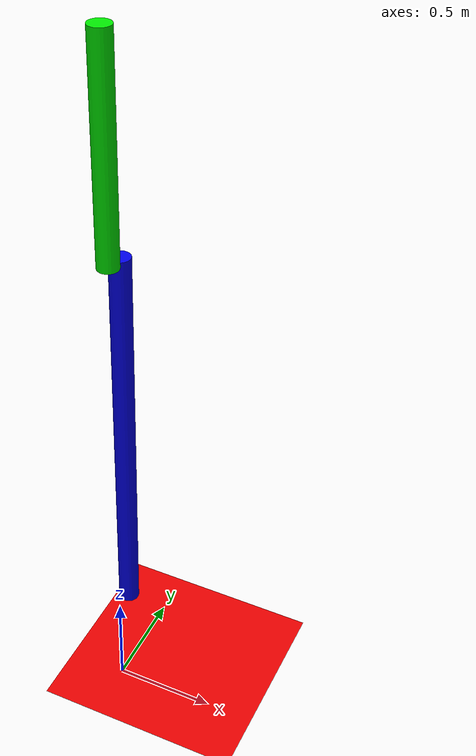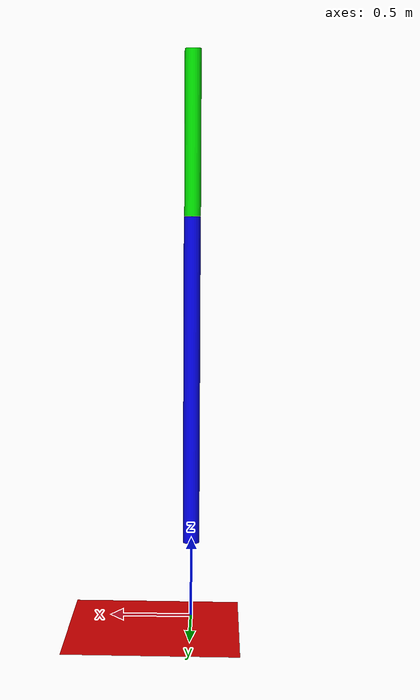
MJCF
<mujoco>
	<option timestep="0.05" integrator="RK4" >
		<flag sensornoise="enable" energy="enable" contact="disable" />
	</option>
	<worldbody>
        <light diffuse=".5 .5 .5" pos="0 0 3" dir="0 0 -1"/>
		<geom type="plane" size="1 1 0.1" rgba=".9 0 0 1"/>
		<body pos="0 0 3.0" euler="0 0 0">
			<joint name="pin1" type="hinge" axis = "0 -1 0" pos="0 0 0.5"/>
			<geom type="cylinder" size="0.05 0.5" rgba="0 .9 0 1" mass="1"/>
			<body pos="0 0.1 -1.5" euler="0 0 0">
				<joint name="pin2" type="hinge" axis = "0 -1 0" pos="0 0 1"/>
				<geom type="cylinder" size="0.05 1" rgba="0 0 .9 1" mass="1"/>
			</body>
		</body>
	</worldbody>
	<actuator>
		<motor joint="pin2" name="motor2" gear="1" ctrllimited="true" ctrlrange="-100 100" />
	</actuator>
</mujoco>
